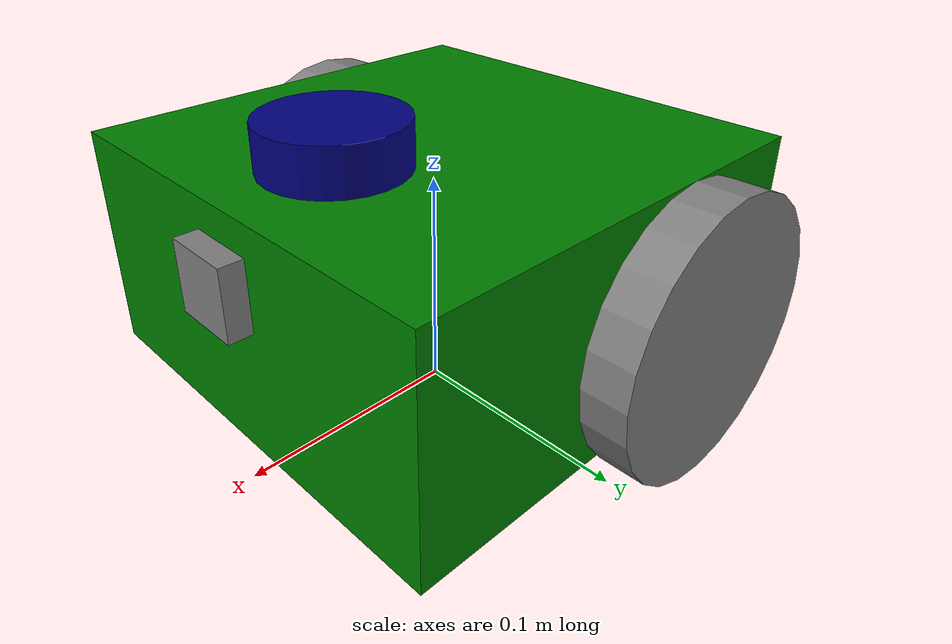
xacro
<?xml version="1.0"?>
<robot name="my_bot" xmlns:xacro="http://www.ros.org/wiki/xacro">

    <xacro:include filename="lidarcamera.xacro"/>
    <xacro:include filename="lidar.xacro"/>

    <link name="base_footprint" ></link>

    <link name="base_link">
        <visual>
            <geometry>
                <box size="${box_length} ${box_width} ${box_height}" />
            </geometry>
            <origin xyz="0 0 ${box_height / 2.0}" rpy="0 0 0" />
            <material name="green" />
        </visual>
        <collision>
            <geometry>
                <box size="${box_length} ${box_width} ${box_height}" />
            </geometry>
            <origin xyz="0 0 ${box_height / 2.0}" rpy="0 0 0" />
        </collision>
        <xacro:box_inertia m="4.0" l="${3*box_length}" w="${3*box_width}" h="${3*box_height}" xyz="0 0 ${box_height / 2.0}" rpy="0 0 0"/>
    </link>

    <xacro:macro name="wheel_link" params="prefix">
        <link name="${prefix}_wheel_link">
            <visual>
                <geometry>
                    <cylinder radius="${side_wheel_radius}" length="${side_wheel_length}" />
                </geometry>
                <origin xyz="0 0 0" rpy="${pi / 2.0} 0 0" />
                <material name="grey" />
            </visual>
            <collision>
                <geometry>
                    <cylinder radius="${side_wheel_radius}" length="${side_wheel_length}" />
                </geometry>
                <origin xyz="0 0 0" rpy="${pi / 2.0} 0 0" />
            </collision>

            <xacro:cylinder_inertia m="0.5" r="${2*side_wheel_radius}" l="${2*side_wheel_length}" xyz="0 0 0" rpy="${2*pi / 2.0} 0 0"/>

        </link>
    </xacro:macro>

    <xacro:wheel_link prefix="right" />
    <xacro:wheel_link prefix="left" />

    <gazebo>
        <plugin name="diff_drive_controller" filename="libgazebo_ros_diff_drive.so">

            <!-- Update rate in Hz -->
            <update_rate>50</update_rate>

            <!-- wheels -->
            <left_joint>base_left_wheel_joint</left_joint>
            <right_joint>base_right_wheel_joint</right_joint>

            <!-- kinematics -->
            <wheel_separation>0.22</wheel_separation>
            <wheel_diameter>0.12</wheel_diameter>

            <!-- input -->
            <command_topic>cmd_vel</command_topic>

            <!-- output -->
            <publish_odom>true</publish_odom>
            <publish_odom_tf>true</publish_odom_tf>
            <publish_wheel_tf>true</publish_wheel_tf>

            <odometry_topic>odom</odometry_topic>
            <odometry_frame>odom</odometry_frame>
            <robot_base_frame>base_footprint</robot_base_frame>
        </plugin>
      </gazebo>

    <link name="front_wheel_link">
        <visual>
            <geometry>
                <sphere radius="${front_wheel_radius}" />
            </geometry>
            <origin xyz="0 0 0" rpy="0 0 0" />
            <material name="grey" />
        </visual>
        <collision>
            <geometry>
                <sphere radius="${front_wheel_radius}" />
            </geometry>
            <origin xyz="0 0 0" rpy="0 0 0" />
        </collision>
        <xacro:sphere_inertia m="0.35" r="${2*front_wheel_radius}" xyz="0 0 0" rpy="0 0 0"/>
    </link>

    <joint name="base_footprint_base_link_joint" type="fixed">
        <parent link="base_footprint" />
        <child link="base_link" />
        <origin xyz="0 0 ${front_wheel_radius}" rpy="0 0 0" />

    </joint>

    <joint name="base_left_wheel_joint" type="continuous">
        <parent link="base_link" />
        <child link="left_wheel_link" />
        <origin xyz="-0.035 ${(box_width + side_wheel_length) / 2.0} 0.040" rpy="0 0 0"/>
        <axis xyz="0 1 0" />
    </joint>

    <joint name="base_right_wheel_joint" type="continuous">
        <parent link="base_link" />
        <child link="right_wheel_link" />
        <origin xyz="-0.035 ${-(box_width + side_wheel_length) / 2.0} 0.040" rpy="0 0 0"/>
        <axis xyz="0 1 0" />
    </joint>

    <joint name="base_front_wheel_joint" type="fixed">
        <parent link="base_link" />
        <child link="front_wheel_link" />
        <origin xyz="0.061 0 0" rpy="0 0 0" />
    </joint>

</robot>

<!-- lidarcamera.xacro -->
<robot xmlns:xacro="https://www.ros.org/wiki/xacro">

    <xacro:property name="box_length" value="0.2" />
    <xacro:property name="box_width" value="0.2" />
    <xacro:property name="box_height" value="0.1" />

    <xacro:property name="side_wheel_radius" value="0.06" />
    <xacro:property name="side_wheel_length" value="0.02" />

    <xacro:property name="front_wheel_radius" value="0.02" />

    <xacro:property name="lidar_radius" value="0.03" />
    <xacro:property name="lidar_height" value="0.02" />

    <material name="green">
        <color rgba="0 0.5 0 1" />
    </material>

    <material name="grey">
        <color rgba="0.5 0.5 0.5 1" />
    </material>

    <material name="blue">
        <color rgba="0 0 0.5 1" />
    </material>

    <gazebo reference="base_link">
            <material value="Gazebo/Green" />
    </gazebo>
    <gazebo reference="left_wheel_link">
        <material value="Gazebo/Grey" />
    </gazebo>
    <gazebo reference="right_wheel_link">
        <material value="Gazebo/Grey" />
    </gazebo>
    <gazebo reference="camera_link">
        <material value="Gazebo/Grey" />
    </gazebo>
    <gazebo reference="lidar_link">
        <material value="Gazebo/Blue" />
    </gazebo>
    <gazebo reference="front_wheel_link">
        <material value="Gazebo/Grey" />
        <mu1 value="0.1" />
        <mu2 value="0.1" />
    </gazebo>

    <xacro:macro name="box_inertia" params="m l w h xyz rpy">
        <inertial>
            <origin xyz="${xyz}" rpy="${rpy}" />
            <mass value="${m}" />
            <inertia ixx="${(m/12.0)*(l*l + h*h)}" ixy="0" ixz="0"
                     iyy="${(m/12.0)*(l*l + w*w)}" iyz="0"
                     izz="${(m/12.0)*(h*h + w*w)}" />
        </inertial>
    </xacro:macro>

    <xacro:macro name="cylinder_inertia" params="m r l xyz rpy">
        <inertial>
            <origin xyz="${xyz}" rpy="${rpy}" />
            <mass value="${m}" />
            <inertia ixx="${(m/12.0)*(3*r*r + l*l)}" ixy="0" ixz="0"
                     iyy="${(m/12.0)*(3*r*r + l*l)}" iyz="0"
                     izz="${(m/2.0)*(r*r)}" />
        </inertial>
    </xacro:macro>

    <xacro:macro name="sphere_inertia" params="m r xyz rpy">
        <inertial>
            <origin xyz="${xyz}" rpy="${rpy}" />
            <mass value="${m}" />
            <inertia ixx="${(2*m*r*r)/5.0}" ixy="0" ixz="0"
                     iyy="${(2*m*r*r)/5.0}" iyz="0"
                     izz="${(2*m*r*r)/5.0}" />
        </inertial>
    </xacro:macro>

</robot>

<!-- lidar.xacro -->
<robot xmlns:xacro = "https://www.ros.org/wiki/xacro">

    <link name="lidar_link">
        <visual>
            <geometry>
                <cylinder radius="${lidar_radius}" length="${lidar_height}" />
            </geometry>
            <origin xyz="0 0 ${lidar_height/2.0}" rpy="0 0 0" />
            <material name="blue" />
        </visual>
        <collision>
            <geometry>
                <cylinder radius="${lidar_radius}" length="${lidar_height}" />
            </geometry>
            <origin xyz="0 0 ${lidar_height/2.0}" rpy="0 0 0" />
        </collision>
        <xacro:cylinder_inertia m="0.3" r="${lidar_radius}" l="${lidar_height}" xyz="0 0 ${lidar_height/2.0}" rpy="0 0 0"/>
    </link>

    <link name="camera_link">
        <visual>
            <geometry>
                <box size="0.01 0.03 0.03" />
            </geometry>
            <origin xyz="0 0 0" rpy="0 0 0" />
            <material name="grey" />
        </visual>
        <collision>
            <geometry>
                <box size="0.01 0.03 0.03" />
            </geometry>
            <origin xyz="0 0 0" rpy="0 0 0" />
        </collision>
        <xacro:box_inertia m="0.1" l="0.01" w="0.03" h="0.03" xyz="0 0 0" rpy="0 0 0" />
    </link>

    <joint name="base_lidar_joint" type="fixed">
        <parent link="base_link" />
        <child link="lidar_link" />
        <origin xyz="${box_length /2.0 - lidar_radius - 0.02} 0 ${box_height}" rpy="0 0 0" />
    </joint>

    <joint name="base_link_camera_link_joint" type="fixed">
        <parent link="base_link" />
        <child link="camera_link" />
        <origin xyz="${(box_length + 0.01)/2.0} 0 ${box_height / 1.4}" rpy="0 0 0" />

    </joint>

    <gazebo reference="camera_link">
        <sensor name="camera_sensor" type="camera">
            <pose>0 0 0 0 0 0</pose>
            <visualize>true</visualize>
            <update_rate>20</update_rate>
            <plugin name="camera_controller" filename="libgazebo_ros_camera.so">
                <frame_name>camera_link</frame_name>
            </plugin>
        </sensor>

    </gazebo>

    <gazebo reference="lidar_link">
        <sensor name="lidar_sensor" type="ray">
            <pose>0 0 0 0 0 0</pose>
            <visualize>true</visualize>
            <update_rate>10</update_rate>
            <ray>
                <scan>
                    <horizontal>
                        <samples>360</samples>
                        <resolution>0.4</resolution>
                        <min_angle>-3.14</min_angle>
                        <max_angle>3.14</max_angle>
                    </horizontal>
                </scan>
                <range>
                    <min>0.2</min>
                    <max>10.0</max>
                    <resolution>0.01</resolution>
                </range>
            </ray>
            <plugin name="lidar_controller" filename="libgazebo_ros_ray_sensor.so">
                <ros>
                    <argument>~/out:=scan</argument>
                </ros>
                <output_type>sensor_msgs/LaserScan</output_type>
                <frame_name>lidar_link</frame_name>
            </plugin>
        </sensor>
    </gazebo>

</robot>
